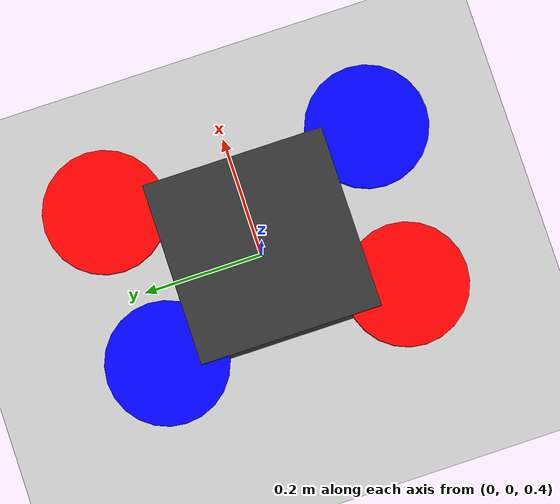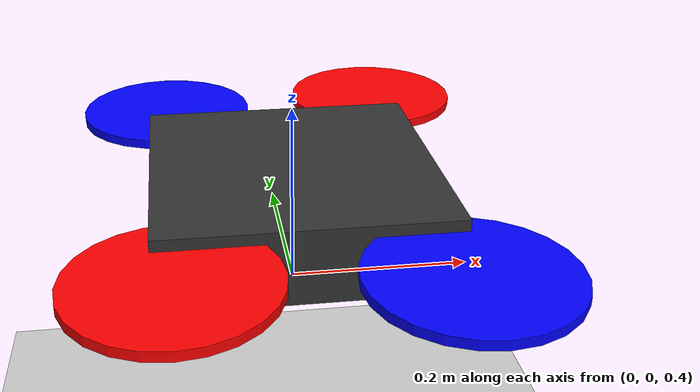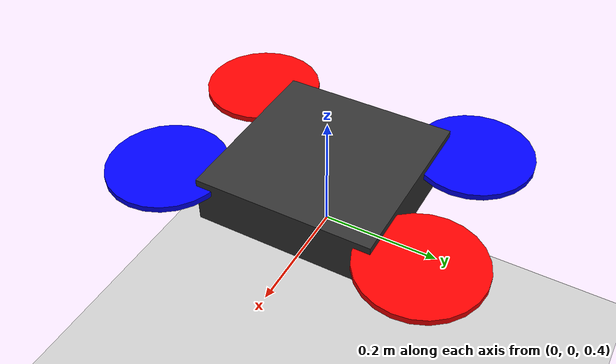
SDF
<?xml version="1.0" ?>
<sdf version="1.8">
  <world name="drone_world">

    <!-- Physics System Plugin -->
    <plugin
      filename="gz-sim-physics-system"
      name="gz::sim::systems::Physics">
    </plugin>
    <plugin
      filename="gz-sim-user-commands-system"
      name="gz::sim::systems::UserCommands">
    </plugin>
    <plugin
      filename="gz-sim-scene-broadcaster-system"
      name="gz::sim::systems::SceneBroadcaster">
    </plugin>

    <!-- Sun Light -->
    <light type="directional" name="sun">
      <cast_shadows>true</cast_shadows>
      <pose>0 0 10 0 0 0</pose>
      <diffuse>0.8 0.8 0.8 1</diffuse>
      <specular>0.2 0.2 0.2 1</specular>
      <attenuation>
        <range>1000</range>
        <constant>0.9</constant>
        <linear>0.01</linear>
        <quadratic>0.001</quadratic>
      </attenuation>
      <direction>-0.5 0.1 -0.9</direction>
    </light>

    <!-- Ground Plane -->
    <model name="ground_plane">
      <static>true</static>
      <link name="link">
        <collision name="collision">
          <geometry>
            <plane>
              <normal>0 0 1</normal>
              <size>100 100</size>
            </plane>
          </geometry>
        </collision>
        <visual name="visual">
          <geometry>
            <plane>
              <normal>0 0 1</normal>
              <size>100 100</size>
            </plane>
          </geometry>
          <material>
            <ambient>0.8 0.8 0.8 1</ambient>
            <diffuse>0.8 0.8 0.8 1</diffuse>
            <specular>0.8 0.8 0.8 1</specular>
          </material>
        </visual>
      </link>
    </model>

    <!-- Drone X3 (Static Spawn) -->
    <include>
      <uri>model://x3</uri>
      <pose>0 0 0.5 0 0 0</pose>
    </include>

  </world>
</sdf>

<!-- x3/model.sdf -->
<sdf version="1.8">
  <model name="x3">
    <pose>0 0 0.055 0 0 0</pose>
    <link name="X3/base_link">
      <pose>0 0 0 0 0 0</pose>
      <inertial>
        <pose>0 0 0 0 0 0</pose>
        <mass>1.5</mass>
        <inertia>
          <ixx>0.03</ixx>
          <ixy>0</ixy>
          <ixz>0</ixz>
          <iyy>0.03</iyy>
          <iyz>0</iyz>
          <izz>0.05</izz>
        </inertia>
      </inertial>
      <collision name="X3/base_link_collision">
        <pose>0 0 0 0 0 0</pose>
        <geometry>
          <box>
            <size>0.47 0.47 0.11</size>
          </box>
        </geometry>
      </collision>
      <visual name="X3/base_link_visual">
        <pose>0 0 0 0 0 0</pose>
        <geometry>
          <box>
            <size>0.3 0.3 0.08</size>
          </box>
        </geometry>
        <material>
          <ambient>0.1 0.1 0.1 1</ambient>
          <diffuse>0.2 0.2 0.2 1</diffuse>
          <specular>0.8 0.8 0.8 1</specular>
        </material>
      </visual>
    </link>

    <!-- Rotor 0 -->
    <link name="X3/rotor_0">
      <pose>0.13 -0.22 0.023 0 0 0</pose>
      <inertial>
        <mass>0.005</mass>
        <inertia>
          <ixx>9.75e-07</ixx>
          <iyy>0.0002731</iyy>
          <izz>0.000274</izz>
        </inertia>
      </inertial>
      <visual name="X3/rotor_0_visual">
        <geometry>
          <cylinder>
            <radius>0.1</radius>
            <length>0.01</length>
          </cylinder>
        </geometry>
        <material>
          <ambient>0 0 1 1</ambient>
          <diffuse>0 0 1 1</diffuse>
        </material>
      </visual>
    </link>

    <joint name="X3/rotor_0_joint" type="revolute">
      <child>X3/rotor_0</child>
      <parent>X3/base_link</parent>
      <axis>
        <xyz>0 0 1</xyz>
        <limit>
          <lower>-1e+16</lower>
          <upper>1e+16</upper>
        </limit>
      </axis>
    </joint>

    <!-- Rotor 1 -->
    <link name="X3/rotor_1">
      <pose>-0.13 0.2 0.023 0 0 0</pose>
      <inertial>
        <mass>0.005</mass>
        <inertia>
          <ixx>9.75e-07</ixx>
          <iyy>0.0002731</iyy>
          <izz>0.000274</izz>
        </inertia>
      </inertial>
      <visual name="X3/rotor_1_visual">
        <geometry>
          <cylinder>
            <radius>0.1</radius>
            <length>0.01</length>
          </cylinder>
        </geometry>
        <material>
          <ambient>0 0 1 1</ambient>
          <diffuse>0 0 1 1</diffuse>
        </material>
      </visual>
    </link>

    <joint name="X3/rotor_1_joint" type="revolute">
      <child>X3/rotor_1</child>
      <parent>X3/base_link</parent>
      <axis>
        <xyz>0 0 1</xyz>
        <limit>
          <lower>-1e+16</lower>
          <upper>1e+16</upper>
        </limit>
      </axis>
    </joint>

    <!-- Rotor 2 -->
    <link name="X3/rotor_2">
      <pose>0.13 0.22 0.023 0 0 0</pose>
      <inertial>
        <mass>0.005</mass>
        <inertia>
          <ixx>9.75e-07</ixx>
          <iyy>0.0002731</iyy>
          <izz>0.000274</izz>
        </inertia>
      </inertial>
      <visual name="X3/rotor_2_visual">
        <geometry>
          <cylinder>
            <radius>0.1</radius>
            <length>0.01</length>
          </cylinder>
        </geometry>
        <material>
          <ambient>1 0 0 1</ambient>
          <diffuse>1 0 0 1</diffuse>
        </material>
      </visual>
    </link>

    <joint name="X3/rotor_2_joint" type="revolute">
      <child>X3/rotor_2</child>
      <parent>X3/base_link</parent>
      <axis>
        <xyz>0 0 1</xyz>
        <limit>
          <lower>-1e+16</lower>
          <upper>1e+16</upper>
        </limit>
      </axis>
    </joint>

    <!-- Rotor 3 -->
    <link name="X3/rotor_3">
      <pose>-0.13 -0.2 0.023 0 0 0</pose>
      <inertial>
        <mass>0.005</mass>
        <inertia>
          <ixx>9.75e-07</ixx>
          <iyy>0.0002731</iyy>
          <izz>0.000274</izz>
        </inertia>
      </inertial>
      <visual name="X3/rotor_3_visual">
        <geometry>
          <cylinder>
            <radius>0.1</radius>
            <length>0.01</length>
          </cylinder>
        </geometry>
        <material>
          <ambient>1 0 0 1</ambient>
          <diffuse>1 0 0 1</diffuse>
        </material>
      </visual>
    </link>

    <joint name="X3/rotor_3_joint" type="revolute">
      <child>X3/rotor_3</child>
      <parent>X3/base_link</parent>
      <axis>
        <xyz>0 0 1</xyz>
        <limit>
          <lower>-1e+16</lower>
          <upper>1e+16</upper>
        </limit>
      </axis>
    </joint>

  </model>
</sdf>
